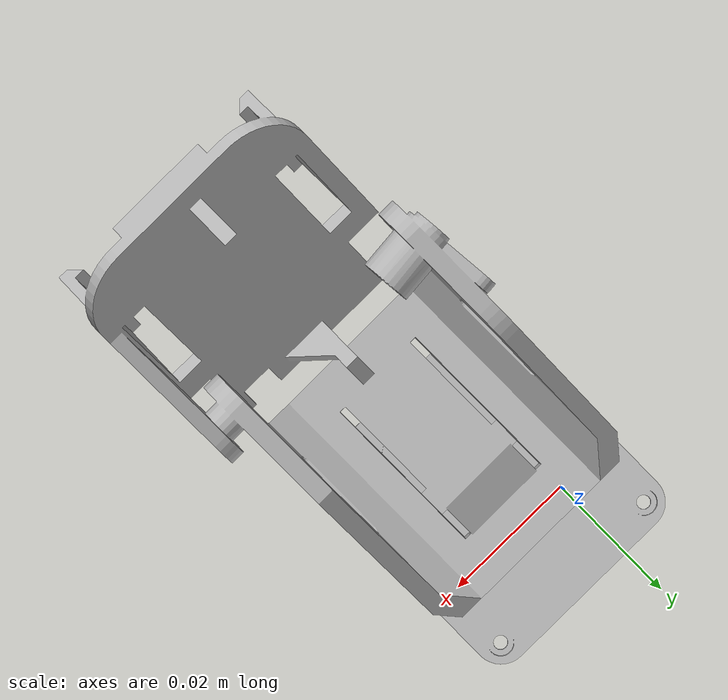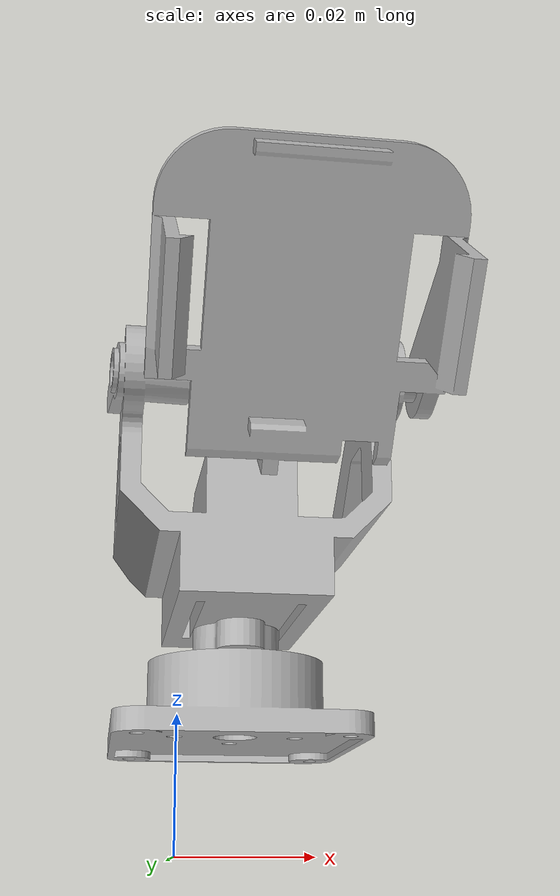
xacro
<?xml version="1.0" ?>
<robot name="arm_2dof" xmlns:xacro="http://www.ros.org/wiki/xacro">

<xacro:include filename="$(find arm_2dof_description)/urdf/materials.xacro" />
<xacro:include filename="$(find arm_2dof_description)/urdf/arm_2dof.trans" />
<xacro:include filename="$(find arm_2dof_description)/urdf/arm_2dof.gazebo" />
<link name="base_link">
  <inertial>
    <origin xyz="0.007190904835301532 -0.007661084791884393 0.01721920682118904" rpy="0 0 0"/>
    <mass value="0.02484644401179895"/>
    <inertia ixx="3e-06" iyy="2e-06" izz="5e-06" ixy="-0.0" iyz="0.0" ixz="-0.0"/>
  </inertial>
  <visual>
    <origin xyz="0 0 0" rpy="0 0 0"/>
    <geometry>
      <mesh filename="package://arm_2dof_description/meshes/base_link.stl" scale="0.001 0.001 0.001"/>
    </geometry>
    <material name="silver"/>
  </visual>
  <collision>
    <origin xyz="0 0 0" rpy="0 0 0"/>
    <geometry>
      <mesh filename="package://arm_2dof_description/meshes/base_link.stl" scale="0.001 0.001 0.001"/>
    </geometry>
  </collision>
</link>

<link name="servo_emax_9g_horn_Domyslna_1">
  <inertial>
    <origin xyz="0.00012471928486684249 0.006684230894218328 0.02220529968883025" rpy="0 0 0"/>
    <mass value="0.10500129664229604"/>
    <inertia ixx="1.9e-05" iyy="1.5e-05" izz="1.9e-05" ixy="-0.0" iyz="-4e-06" ixz="-0.0"/>
  </inertial>
  <visual>
    <origin xyz="-0.007191 0.011294 -0.01741" rpy="0 0 0"/>
    <geometry>
      <mesh filename="package://arm_2dof_description/meshes/servo_emax_9g_horn_Domyslna_1.stl" scale="0.001 0.001 0.001"/>
    </geometry>
    <material name="silver"/>
  </visual>
  <collision>
    <origin xyz="-0.007191 0.011294 -0.01741" rpy="0 0 0"/>
    <geometry>
      <mesh filename="package://arm_2dof_description/meshes/servo_emax_9g_horn_Domyslna_1.stl" scale="0.001 0.001 0.001"/>
    </geometry>
  </collision>
</link>

<link name="pantilt_3_Domyslna_1">
  <inertial>
    <origin xyz="0.015033332944940702 -0.007016810815117265 0.011565982070664664" rpy="0 0 0"/>
    <mass value="0.025707768034284914"/>
    <inertia ixx="3e-06" iyy="4e-06" izz="5e-06" ixy="0.0" iyz="1e-06" ixz="-0.0"/>
  </inertial>
  <visual>
    <origin xyz="0.012152 -0.015704 -0.05701" rpy="0 0 0"/>
    <geometry>
      <mesh filename="package://arm_2dof_description/meshes/pantilt_3_Domyslna_1.stl" scale="0.001 0.001 0.001"/>
    </geometry>
    <material name="silver"/>
  </visual>
  <collision>
    <origin xyz="0.012152 -0.015704 -0.05701" rpy="0 0 0"/>
    <geometry>
      <mesh filename="package://arm_2dof_description/meshes/pantilt_3_Domyslna_1.stl" scale="0.001 0.001 0.001"/>
    </geometry>
  </collision>
</link>

<joint name="joint 1" type="revolute">
  <origin xyz="0.007191 -0.011294 0.01741" rpy="0 0 0"/>
  <parent link="base_link"/>
  <child link="servo_emax_9g_horn_Domyslna_1"/>
  <axis xyz="0.0 0.0 -1.0"/>
  <limit upper="4.712389" lower="1.570796" effort="100" velocity="100"/>
</joint>

<joint name="joint2" type="revolute">
  <origin xyz="-0.019343 0.026998 0.0396" rpy="0 0 0"/>
  <parent link="servo_emax_9g_horn_Domyslna_1"/>
  <child link="pantilt_3_Domyslna_1"/>
  <axis xyz="-0.999986 -0.005275 0.0"/>
  <limit upper="3.403392" lower="0.261799" effort="100" velocity="100"/>
</joint>

</robot>

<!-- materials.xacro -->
<robot name="arm_2dof" xmlns:xacro="http://www.ros.org/wiki/xacro" >

<material name="silver">
  <color rgba="0.700 0.700 0.700 1.000"/>
</material>

</robot>

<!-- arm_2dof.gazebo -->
<robot name="arm_2dof" xmlns:xacro="http://www.ros.org/wiki/xacro" >

<xacro:property name="body_color" value="Gazebo/Silver" />

<gazebo>
  <plugin name="control" filename="libgazebo_ros_control.so"/>
</gazebo>
<gazebo reference="base_link">
  <material>${body_color}</material>
  <mu1>0.2</mu1>
  <mu2>0.2</mu2>
  <selfCollide>true</selfCollide>
  <gravity>true</gravity>
</gazebo>

<gazebo reference="servo_emax_9g_horn_Domyslna_1">
  <material>${body_color}</material>
  <mu1>0.2</mu1>
  <mu2>0.2</mu2>
  <selfCollide>true</selfCollide>
</gazebo>

<gazebo reference="pantilt_3_Domyslna_1">
  <material>${body_color}</material>
  <mu1>0.2</mu1>
  <mu2>0.2</mu2>
  <selfCollide>true</selfCollide>
</gazebo>

</robot>
